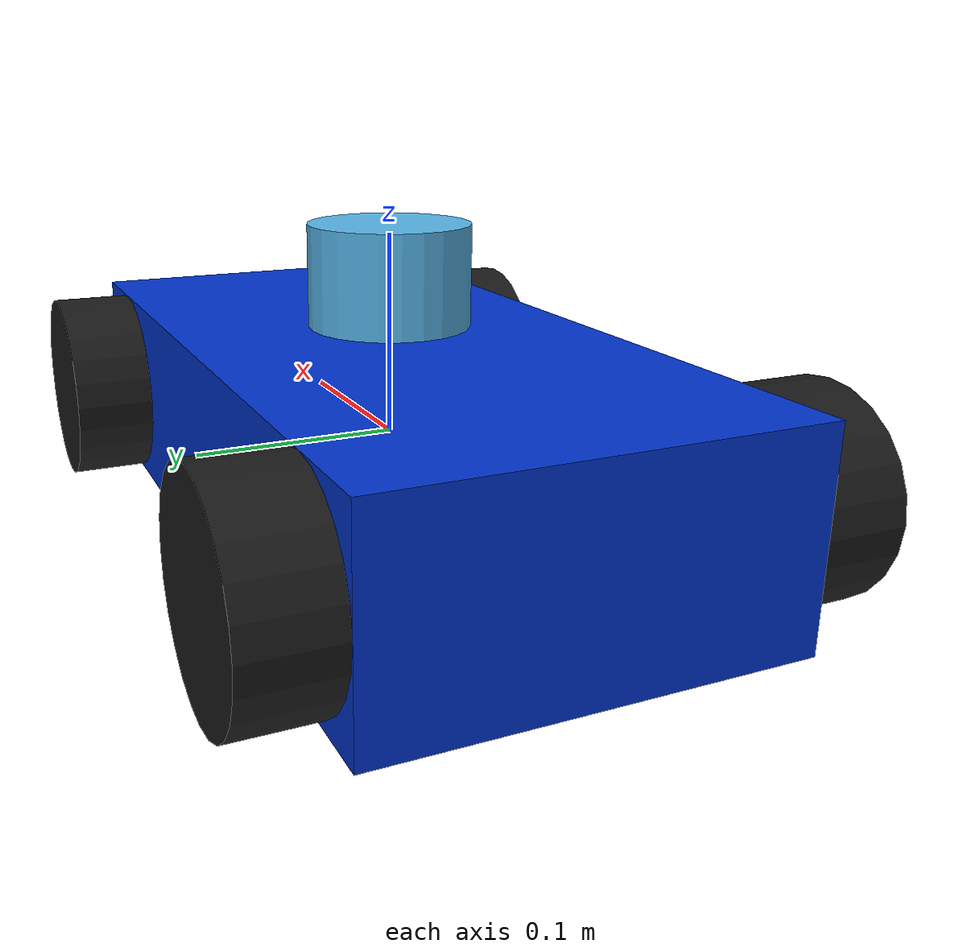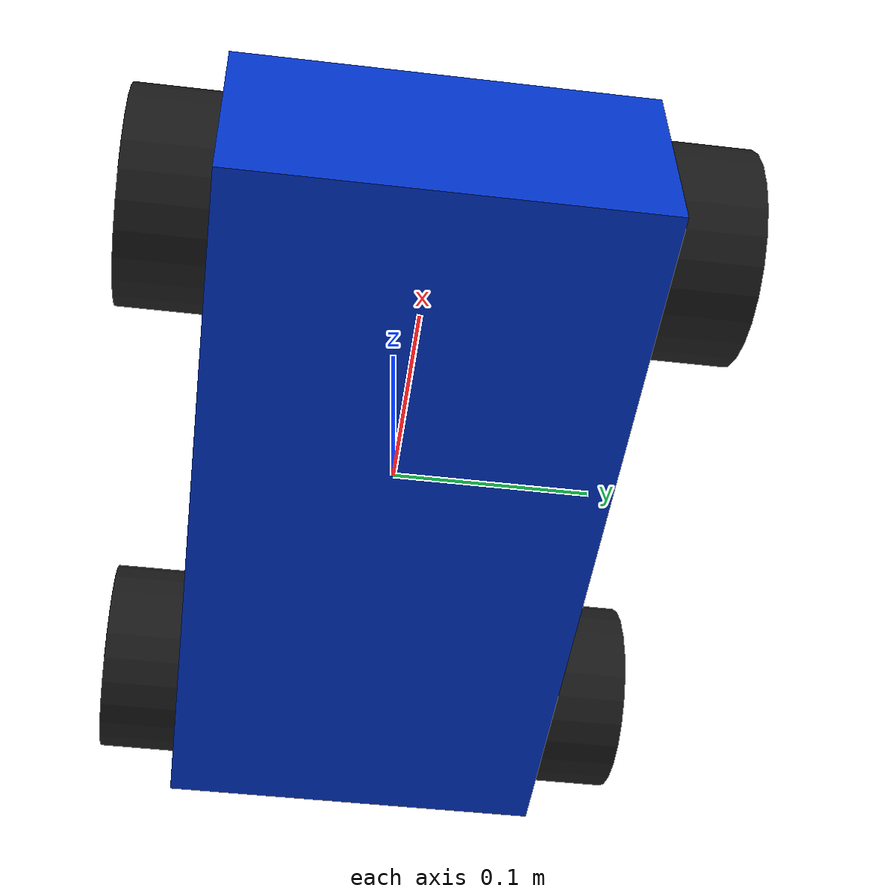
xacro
<?xml version="1.0"?>
<robot xmlns:xacro="http://www.ros.org/wiki/xacro" name="car_4ws">

  <xacro:property name="chassis_len" value="0.4"/>
  <xacro:property name="chassis_width" value="0.2"/>
  <xacro:property name="chassis_height" value="0.1"/>
  <xacro:property name="wheel_radius" value="0.05"/>
  <xacro:property name="wheel_thick" value="0.04"/>

  <xacro:macro name="box_inertia" params="m w l h">
    <inertial>
      <mass value="${m}"/>
      <inertia ixx="${(m/12)*(h*h+l*l)}" ixy="0" ixz="0" iyy="${(m/12)*(w*w+l*l)}" iyz="0" izz="${(m/12)*(w*w+h*h)}"/>
    </inertial>
  </xacro:macro>

  <xacro:macro name="cylinder_inertia" params="m r h">
    <inertial>
      <mass value="${m}"/>
      <inertia ixx="${(m/12)*(3*r*r+h*h)}" ixy="0" ixz="0" iyy="${(m/12)*(3*r*r+h*h)}" iyz="0" izz="${(m/2)*(r*r)}"/>
    </inertial>
  </xacro:macro>

  <material name="blue"><color rgba="0.0 0.2 0.8 1.0"/></material>
  <link name="chassis">
    <visual><geometry><box size="${chassis_len} ${chassis_width} ${chassis_height}"/></geometry><material name="blue"/></visual>
    <collision><geometry><box size="${chassis_len} ${chassis_width} ${chassis_height}"/></geometry></collision>
    <xacro:box_inertia m="5.0" w="${chassis_width}" l="${chassis_len}" h="${chassis_height}"/>
  </link>

  <material name="black"><color rgba="0.1 0.1 0.1 1.0"/></material>
  <xacro:macro name="swerve_wheel" params="prefix x_pos y_pos">
    <link name="${prefix}_steer_link"><xacro:cylinder_inertia m="0.1" r="0.02" h="0.02"/></link>
    <joint name="${prefix}_steer_joint" type="revolute">
      <parent link="chassis"/><child link="${prefix}_steer_link"/>
      <origin xyz="${x_pos} ${y_pos} 0" rpy="0 0 0"/><axis xyz="0 0 1"/>
      <limit lower="-0.785" upper="0.785" effort="10" velocity="1.5"/>
    </joint>

    <link name="${prefix}_wheel_link">
      <visual><geometry><cylinder radius="${wheel_radius}" length="${wheel_thick}"/></geometry><origin xyz="0 0 0" rpy="1.5708 0 0"/><material name="black"/></visual>
      <collision><geometry><cylinder radius="${wheel_radius}" length="${wheel_thick}"/></geometry><origin xyz="0 0 0" rpy="1.5708 0 0"/></collision>
      <xacro:cylinder_inertia m="1.0" r="${wheel_radius}" h="${wheel_thick}"/>
    </link>
    <joint name="${prefix}_wheel_joint" type="continuous">
      <parent link="${prefix}_steer_link"/><child link="${prefix}_wheel_link"/>
      <origin xyz="0 0 0" rpy="0 0 0"/><axis xyz="0 1 0"/>
      <limit effort="5" velocity="25"/>
    </joint>
  </xacro:macro>

  <xacro:swerve_wheel prefix="fl" x_pos="0.15" y_pos="0.12"/>
  <xacro:swerve_wheel prefix="fr" x_pos="0.15" y_pos="-0.12"/>
  <xacro:swerve_wheel prefix="rl" x_pos="-0.15" y_pos="0.12"/>
  <xacro:swerve_wheel prefix="rr" x_pos="-0.15" y_pos="-0.12"/>

  <link name="lidar_link">
    <visual><geometry><cylinder radius="0.04" length="0.05"/></geometry></visual>
    <collision><geometry><cylinder radius="0.04" length="0.05"/></geometry></collision>
    <xacro:cylinder_inertia m="0.2" r="0.04" h="0.05"/>
  </link>
  <joint name="lidar_joint" type="fixed">
    <parent link="chassis"/><child link="lidar_link"/><origin xyz="0 0 0.08" rpy="0 0 0"/>
  </joint>

  <gazebo reference="lidar_link">
    <sensor name="lidar" type="ray">
      <always_on>true</always_on><visualize>true</visualize><update_rate>10</update_rate>
      <ray>
        <scan><horizontal><samples>360</samples><resolution>1</resolution><min_angle>-3.14</min_angle><max_angle>3.14</max_angle></horizontal></scan>
        <range><min>0.12</min><max>10.0</max><resolution>0.01</resolution></range>
      </ray>
      <plugin name="gazebo_ros_lidar_controller" filename="libgazebo_ros_ray_sensor.so">
        <ros><remapping>~/out:=scan</remapping></ros>
        <output_type>sensor_msgs/LaserScan</output_type>
        <frame_name>lidar_link</frame_name>
      </plugin>
    </sensor>
  </gazebo>

  <ros2_control name="GazeboSystem" type="system">
    <hardware><plugin>gazebo_ros2_control/GazeboSystem</plugin></hardware>
    <xacro:macro name="swerve_transmission" params="prefix">
      <joint name="${prefix}_steer_joint">
        <command_interface name="position"/><state_interface name="position"/>
      </joint>
      <joint name="${prefix}_wheel_joint">
        <command_interface name="velocity"/><state_interface name="velocity"/><state_interface name="position"/>
      </joint>
    </xacro:macro>
    <xacro:swerve_transmission prefix="fl"/>
    <xacro:swerve_transmission prefix="fr"/>
    <xacro:swerve_transmission prefix="rl"/>
    <xacro:swerve_transmission prefix="rr"/>
  </ros2_control>

  <gazebo>
    <plugin filename="libgazebo_ros2_control.so" name="gazebo_ros2_control">
      <parameters>/home/kenji/Desktop/my_4ws_robot/config/controllers.yaml</parameters>
    </plugin>
  </gazebo>

  <gazebo>
    <plugin name="gazebo_ros_p3d" filename="libgazebo_ros_p3d.so">
      <ros>
        <namespace>/</namespace>
        <remapping>odom:=/ground_truth</remapping>
      </ros>
      <body_name>chassis</body_name>
      <frame_name>world</frame_name>
      <update_rate>50.0</update_rate>
      <xyz_offset>0 0 0</xyz_offset>
      <rpy_offset>0 0 0</rpy_offset>
      <gaussian_noise>0.0</gaussian_noise>
    </plugin>
  </gazebo>

</robot>
